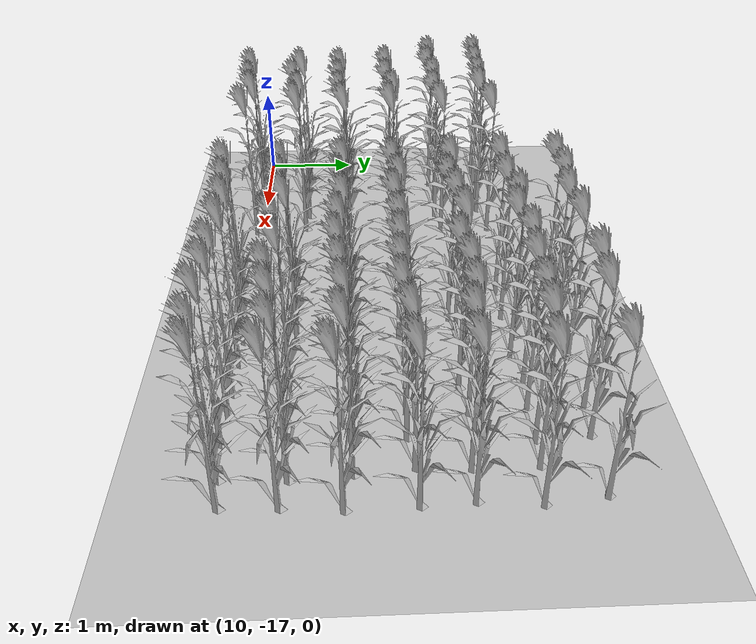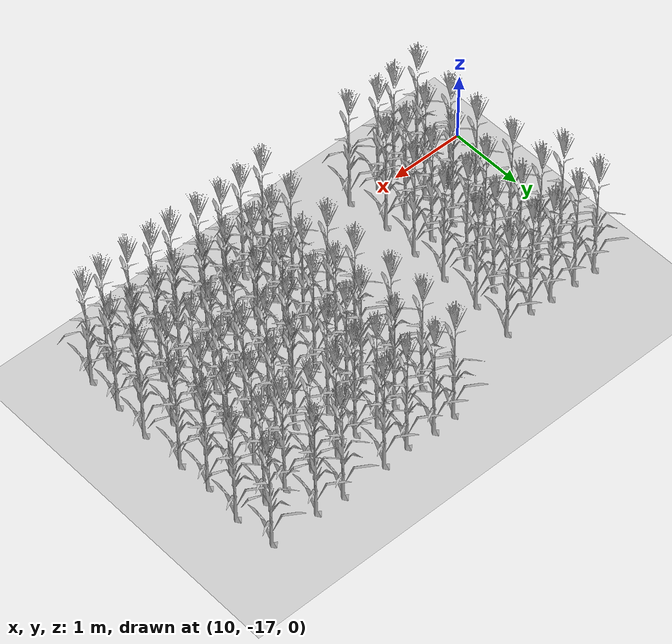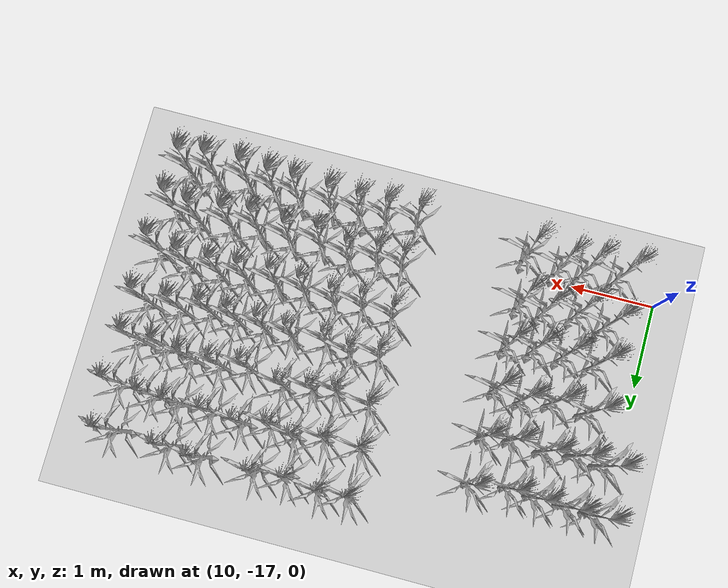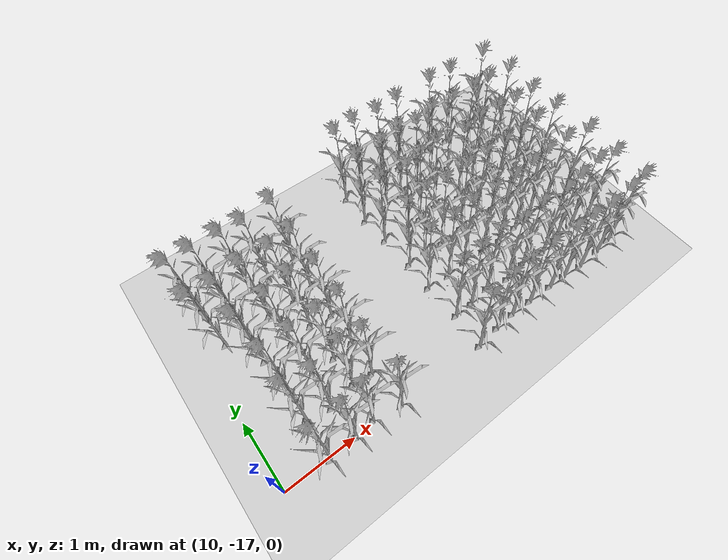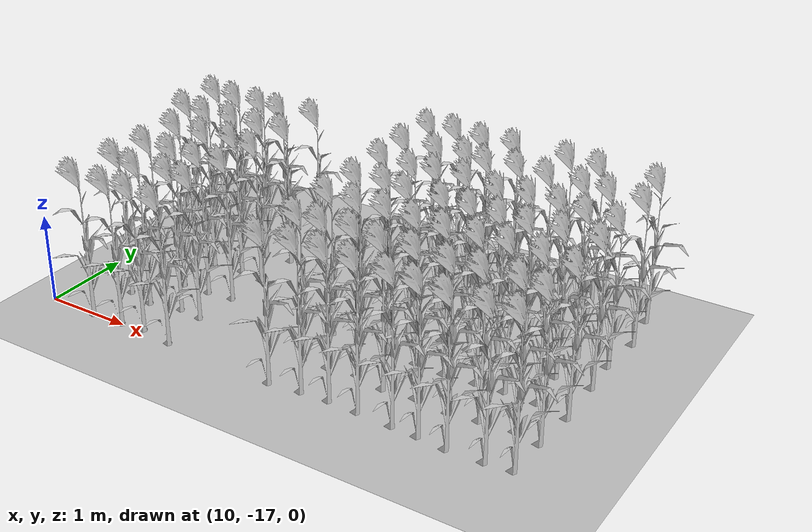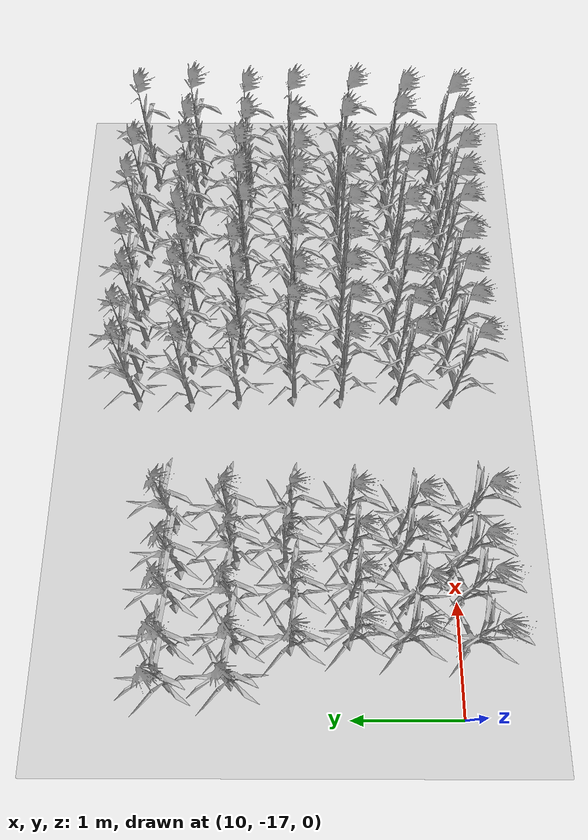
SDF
<sdf version="1.7">
 <world name="farmland_world">
  <model name="ground_plane">
   <static>1</static>
   <link name="link">
    <collision name="collision">
     <geometry><plane><normal>0 0 1</normal><size>40.0 40.0</size></plane></geometry>
     <surface><friction><ode><mu>100</mu><mu2>50</mu2></ode></friction></surface>
    </collision>
    <visual name="visual">
     <cast_shadows>0</cast_shadows>
     <geometry><plane><normal>0 0 1</normal><size>40.0 40.0</size></plane></geometry>
     <material>
      <script><uri>file://media/materials/scripts/gazebo.material</uri><name>Gazebo/Grey</name></script>
     </material>
    </visual>
   </link>
  </model>
  <model name="tree_3_414">
   <static>1</static>
   <link name="link">
    <collision name="collision">
     <geometry><mesh><uri>model://Corn_low_poly/corn.obj</uri><scale>1 1 1</scale></mesh></geometry>
     <surface><friction><ode><mu>100</mu><mu2>50</mu2></ode></friction></surface>
    </collision>
    <visual name="visual">
     <geometry><mesh><uri>model://Corn_low_poly/corn.obj</uri><scale>1 1 1</scale></mesh></geometry>
    </visual>
   </link>
   <pose>10.318505995673648 -14.39027419116462 0 0 0 0</pose>
  </model>
  <model name="tree_3_415">
   <static>1</static>
   <link name="link">
    <collision name="collision">
     <geometry><mesh><uri>model://Corn_low_poly/corn.obj</uri><scale>1 1 1</scale></mesh></geometry>
     <surface><friction><ode><mu>100</mu><mu2>50</mu2></ode></friction></surface>
    </collision>
    <visual name="visual">
     <geometry><mesh><uri>model://Corn_low_poly/corn.obj</uri><scale>1 1 1</scale></mesh></geometry>
    </visual>
   </link>
   <pose>10.33255970619316 -14.934165297839725 0 0 0 0</pose>
  </model>
  <model name="tree_3_444">
   <static>1</static>
   <link name="link">
    <collision name="collision">
     <geometry><mesh><uri>model://Corn_low_poly/corn.obj</uri><scale>1 1 1</scale></mesh></geometry>
     <surface><friction><ode><mu>100</mu><mu2>50</mu2></ode></friction></surface>
    </collision>
    <visual name="visual">
     <geometry><mesh><uri>model://Corn_low_poly/corn.obj</uri><scale>1 1 1</scale></mesh></geometry>
    </visual>
   </link>
   <pose>10.628539014141005 -14.403042911683016 0 0 0 0</pose>
  </model>
  <model name="tree_3_445">
   <static>1</static>
   <link name="link">
    <collision name="collision">
     <geometry><mesh><uri>model://Corn_low_poly/corn.obj</uri><scale>1 1 1</scale></mesh></geometry>
     <surface><friction><ode><mu>100</mu><mu2>50</mu2></ode></friction></surface>
    </collision>
    <visual name="visual">
     <geometry><mesh><uri>model://Corn_low_poly/corn.obj</uri><scale>1 1 1</scale></mesh></geometry>
    </visual>
   </link>
   <pose>10.64200338443756 -14.967694048747475 0 0 0 0</pose>
  </model>
  <model name="tree_3_446">
   <static>1</static>
   <link name="link">
    <collision name="collision">
     <geometry><mesh><uri>model://Corn_low_poly/corn.obj</uri><scale>1 1 1</scale></mesh></geometry>
     <surface><friction><ode><mu>100</mu><mu2>50</mu2></ode></friction></surface>
    </collision>
    <visual name="visual">
     <geometry><mesh><uri>model://Corn_low_poly/corn.obj</uri><scale>1 1 1</scale></mesh></geometry>
    </visual>
   </link>
   <pose>10.62614067962394 -15.458509562354656 0 0 0 0</pose>
  </model>
  <model name="tree_3_447">
   <static>1</static>
   <link name="link">
    <collision name="collision">
     <geometry><mesh><uri>model://Corn_low_poly/corn.obj</uri><scale>1 1 1</scale></mesh></geometry>
     <surface><friction><ode><mu>100</mu><mu2>50</mu2></ode></friction></surface>
    </collision>
    <visual name="visual">
     <geometry><mesh><uri>model://Corn_low_poly/corn.obj</uri><scale>1 1 1</scale></mesh></geometry>
    </visual>
   </link>
   <pose>10.675190546503716 -15.988190008646807 0 0 0 0</pose>
  </model>
  <model name="tree_3_448">
   <static>1</static>
   <link name="link">
    <collision name="collision">
     <geometry><mesh><uri>model://Corn_low_poly/corn.obj</uri><scale>1 1 1</scale></mesh></geometry>
     <surface><friction><ode><mu>100</mu><mu2>50</mu2></ode></friction></surface>
    </collision>
    <visual name="visual">
     <geometry><mesh><uri>model://Corn_low_poly/corn.obj</uri><scale>1 1 1</scale></mesh></geometry>
    </visual>
   </link>
   <pose>10.655045053487182 -16.441887951826953 0 0 0 0</pose>
  </model>
  <model name="tree_3_449">
   <static>1</static>
   <link name="link">
    <collision name="collision">
     <geometry><mesh><uri>model://Corn_low_poly/corn.obj</uri><scale>1 1 1</scale></mesh></geometry>
     <surface><friction><ode><mu>100</mu><mu2>50</mu2></ode></friction></surface>
    </collision>
    <visual name="visual">
     <geometry><mesh><uri>model://Corn_low_poly/corn.obj</uri><scale>1 1 1</scale></mesh></geometry>
    </visual>
   </link>
   <pose>10.639123765461491 -17.016697311473507 0 0 0 0</pose>
  </model>
  <model name="tree_3_474">
   <static>1</static>
   <link name="link">
    <collision name="collision">
     <geometry><mesh><uri>model://Corn_low_poly/corn.obj</uri><scale>1 1 1</scale></mesh></geometry>
     <surface><friction><ode><mu>100</mu><mu2>50</mu2></ode></friction></surface>
    </collision>
    <visual name="visual">
     <geometry><mesh><uri>model://Corn_low_poly/corn.obj</uri><scale>1 1 1</scale></mesh></geometry>
    </visual>
   </link>
   <pose>10.991777529010998 -14.41053702112643 0 0 0 0</pose>
  </model>
  <model name="tree_3_475">
   <static>1</static>
   <link name="link">
    <collision name="collision">
     <geometry><mesh><uri>model://Corn_low_poly/corn.obj</uri><scale>1 1 1</scale></mesh></geometry>
     <surface><friction><ode><mu>100</mu><mu2>50</mu2></ode></friction></surface>
    </collision>
    <visual name="visual">
     <geometry><mesh><uri>model://Corn_low_poly/corn.obj</uri><scale>1 1 1</scale></mesh></geometry>
    </visual>
   </link>
   <pose>10.998304538591645 -14.925738596997299 0 0 0 0</pose>
  </model>
  <model name="tree_3_476">
   <static>1</static>
   <link name="link">
    <collision name="collision">
     <geometry><mesh><uri>model://Corn_low_poly/corn.obj</uri><scale>1 1 1</scale></mesh></geometry>
     <surface><friction><ode><mu>100</mu><mu2>50</mu2></ode></friction></surface>
    </collision>
    <visual name="visual">
     <geometry><mesh><uri>model://Corn_low_poly/corn.obj</uri><scale>1 1 1</scale></mesh></geometry>
    </visual>
   </link>
   <pose>11.028290751969427 -15.466265066491058 0 0 0 0</pose>
  </model>
  <model name="tree_3_477">
   <static>1</static>
   <link name="link">
    <collision name="collision">
     <geometry><mesh><uri>model://Corn_low_poly/corn.obj</uri><scale>1 1 1</scale></mesh></geometry>
     <surface><friction><ode><mu>100</mu><mu2>50</mu2></ode></friction></surface>
    </collision>
    <visual name="visual">
     <geometry><mesh><uri>model://Corn_low_poly/corn.obj</uri><scale>1 1 1</scale></mesh></geometry>
    </visual>
   </link>
   <pose>11.030448810245783 -15.997065588892934 0 0 0 0</pose>
  </model>
  <model name="tree_3_478">
   <static>1</static>
   <link name="link">
    <collision name="collision">
     <geometry><mesh><uri>model://Corn_low_poly/corn.obj</uri><scale>1 1 1</scale></mesh></geometry>
     <surface><friction><ode><mu>100</mu><mu2>50</mu2></ode></friction></surface>
    </collision>
    <visual name="visual">
     <geometry><mesh><uri>model://Corn_low_poly/corn.obj</uri><scale>1 1 1</scale></mesh></geometry>
    </visual>
   </link>
   <pose>10.984404252659225 -16.511796548939877 0 0 0 0</pose>
  </model>
  <model name="tree_3_479">
   <static>1</static>
   <link name="link">
    <collision name="collision">
     <geometry><mesh><uri>model://Corn_low_poly/corn.obj</uri><scale>1 1 1</scale></mesh></geometry>
     <surface><friction><ode><mu>100</mu><mu2>50</mu2></ode></friction></surface>
    </collision>
    <visual name="visual">
     <geometry><mesh><uri>model://Corn_low_poly/corn.obj</uri><scale>1 1 1</scale></mesh></geometry>
    </visual>
   </link>
   <pose>11.02479439546209 -16.99717231120693 0 0 0 0</pose>
  </model>
  <model name="tree_3_504">
   <static>1</static>
   <link name="link">
    <collision name="collision">
     <geometry><mesh><uri>model://Corn_low_poly/corn.obj</uri><scale>1 1 1</scale></mesh></geometry>
     <surface><friction><ode><mu>100</mu><mu2>50</mu2></ode></friction></surface>
    </collision>
    <visual name="visual">
     <geometry><mesh><uri>model://Corn_low_poly/corn.obj</uri><scale>1 1 1</scale></mesh></geometry>
    </visual>
   </link>
   <pose>11.29060489834677 -14.435912453428934 0 0 0 0</pose>
  </model>
  <model name="tree_3_505">
   <static>1</static>
   <link name="link">
    <collision name="collision">
     <geometry><mesh><uri>model://Corn_low_poly/corn.obj</uri><scale>1 1 1</scale></mesh></geometry>
     <surface><friction><ode><mu>100</mu><mu2>50</mu2></ode></friction></surface>
    </collision>
    <visual name="visual">
     <geometry><mesh><uri>model://Corn_low_poly/corn.obj</uri><scale>1 1 1</scale></mesh></geometry>
    </visual>
   </link>
   <pose>11.378198869245816 -14.94975604721588 0 0 0 0</pose>
  </model>
  <model name="tree_3_506">
   <static>1</static>
   <link name="link">
    <collision name="collision">
     <geometry><mesh><uri>model://Corn_low_poly/corn.obj</uri><scale>1 1 1</scale></mesh></geometry>
     <surface><friction><ode><mu>100</mu><mu2>50</mu2></ode></friction></surface>
    </collision>
    <visual name="visual">
     <geometry><mesh><uri>model://Corn_low_poly/corn.obj</uri><scale>1 1 1</scale></mesh></geometry>
    </visual>
   </link>
   <pose>11.369229447230142 -15.401079052199101 0 0 0 0</pose>
  </model>
  <model name="tree_3_507">
   <static>1</static>
   <link name="link">
    <collision name="collision">
     <geometry><mesh><uri>model://Corn_low_poly/corn.obj</uri><scale>1 1 1</scale></mesh></geometry>
     <surface><friction><ode><mu>100</mu><mu2>50</mu2></ode></friction></surface>
    </collision>
    <visual name="visual">
     <geometry><mesh><uri>model://Corn_low_poly/corn.obj</uri><scale>1 1 1</scale></mesh></geometry>
    </visual>
   </link>
   <pose>11.366453865646786 -15.9883721674735 0 0 0 0</pose>
  </model>
  <model name="tree_3_508">
   <static>1</static>
   <link name="link">
    <collision name="collision">
     <geometry><mesh><uri>model://Corn_low_poly/corn.obj</uri><scale>1 1 1</scale></mesh></geometry>
     <surface><friction><ode><mu>100</mu><mu2>50</mu2></ode></friction></surface>
    </collision>
    <visual name="visual">
     <geometry><mesh><uri>model://Corn_low_poly/corn.obj</uri><scale>1 1 1</scale></mesh></geometry>
    </visual>
   </link>
   <pose>11.36009342840449 -16.43373811521189 0 0 0 0</pose>
  </model>
  <model name="tree_3_509">
   <static>1</static>
   <link name="link">
    <collision name="collision">
     <geometry><mesh><uri>model://Corn_low_poly/corn.obj</uri><scale>1 1 1</scale></mesh></geometry>
     <surface><friction><ode><mu>100</mu><mu2>50</mu2></ode></friction></surface>
    </collision>
    <visual name="visual">
     <geometry><mesh><uri>model://Corn_low_poly/corn.obj</uri><scale>1 1 1</scale></mesh></geometry>
    </visual>
   </link>
   <pose>11.303911461985631 -16.96194511279953 0 0 0 0</pose>
  </model>
  <model name="tree_3_534">
   <static>1</static>
   <link name="link">
    <collision name="collision">
     <geometry><mesh><uri>model://Corn_low_poly/corn.obj</uri><scale>1 1 1</scale></mesh></geometry>
     <surface><friction><ode><mu>100</mu><mu2>50</mu2></ode></friction></surface>
    </collision>
    <visual name="visual">
     <geometry><mesh><uri>model://Corn_low_poly/corn.obj</uri><scale>1 1 1</scale></mesh></geometry>
    </visual>
   </link>
   <pose>11.718569885644671 -14.370633760723742 0 0 0 0</pose>
  </model>
  <model name="tree_3_535">
   <static>1</static>
   <link name="link">
    <collision name="collision">
     <geometry><mesh><uri>model://Corn_low_poly/corn.obj</uri><scale>1 1 1</scale></mesh></geometry>
     <surface><friction><ode><mu>100</mu><mu2>50</mu2></ode></friction></surface>
    </collision>
    <visual name="visual">
     <geometry><mesh><uri>model://Corn_low_poly/corn.obj</uri><scale>1 1 1</scale></mesh></geometry>
    </visual>
   </link>
   <pose>11.69146800901288 -14.903018499819554 0 0 0 0</pose>
  </model>
  <model name="tree_3_536">
   <static>1</static>
   <link name="link">
    <collision name="collision">
     <geometry><mesh><uri>model://Corn_low_poly/corn.obj</uri><scale>1 1 1</scale></mesh></geometry>
     <surface><friction><ode><mu>100</mu><mu2>50</mu2></ode></friction></surface>
    </collision>
    <visual name="visual">
     <geometry><mesh><uri>model://Corn_low_poly/corn.obj</uri><scale>1 1 1</scale></mesh></geometry>
    </visual>
   </link>
   <pose>11.680672471613226 -15.45069342316152 0 0 0 0</pose>
  </model>
  <model name="tree_3_537">
   <static>1</static>
   <link name="link">
    <collision name="collision">
     <geometry><mesh><uri>model://Corn_low_poly/corn.obj</uri><scale>1 1 1</scale></mesh></geometry>
     <surface><friction><ode><mu>100</mu><mu2>50</mu2></ode></friction></surface>
    </collision>
    <visual name="visual">
     <geometry><mesh><uri>model://Corn_low_poly/corn.obj</uri><scale>1 1 1</scale></mesh></geometry>
    </visual>
   </link>
   <pose>11.67019340857157 -15.954562289669033 0 0 0 0</pose>
  </model>
  <model name="tree_3_538">
   <static>1</static>
   <link name="link">
    <collision name="collision">
     <geometry><mesh><uri>model://Corn_low_poly/corn.obj</uri><scale>1 1 1</scale></mesh></geometry>
     <surface><friction><ode><mu>100</mu><mu2>50</mu2></ode></friction></surface>
    </collision>
    <visual name="visual">
     <geometry><mesh><uri>model://Corn_low_poly/corn.obj</uri><scale>1 1 1</scale></mesh></geometry>
    </visual>
   </link>
   <pose>11.637608736446666 -16.46442620602015 0 0 0 0</pose>
  </model>
  <model name="tree_3_539">
   <static>1</static>
   <link name="link">
    <collision name="collision">
     <geometry><mesh><uri>model://Corn_low_poly/corn.obj</uri><scale>1 1 1</scale></mesh></geometry>
     <surface><friction><ode><mu>100</mu><mu2>50</mu2></ode></friction></surface>
    </collision>
    <visual name="visual">
     <geometry><mesh><uri>model://Corn_low_poly/corn.obj</uri><scale>1 1 1</scale></mesh></geometry>
    </visual>
   </link>
   <pose>11.69683116003274 -17.024934207818273 0 0 0 0</pose>
  </model>
  <model name="tree_3_563">
   <static>1</static>
   <link name="link">
    <collision name="collision">
     <geometry><mesh><uri>model://Corn_low_poly/corn.obj</uri><scale>1 1 1</scale></mesh></geometry>
     <surface><friction><ode><mu>100</mu><mu2>50</mu2></ode></friction></surface>
    </collision>
    <visual name="visual">
     <geometry><mesh><uri>model://Corn_low_poly/corn.obj</uri><scale>1 1 1</scale></mesh></geometry>
    </visual>
   </link>
   <pose>12.968831590598008 -13.918923949075287 0 0 0 0</pose>
  </model>
  <model name="tree_3_564">
   <static>1</static>
   <link name="link">
    <collision name="collision">
     <geometry><mesh><uri>model://Corn_low_poly/corn.obj</uri><scale>1 1 1</scale></mesh></geometry>
     <surface><friction><ode><mu>100</mu><mu2>50</mu2></ode></friction></surface>
    </collision>
    <visual name="visual">
     <geometry><mesh><uri>model://Corn_low_poly/corn.obj</uri><scale>1 1 1</scale></mesh></geometry>
    </visual>
   </link>
   <pose>12.95799318968643 -14.444417115495693 0 0 0 0</pose>
  </model>
  <model name="tree_3_565">
   <static>1</static>
   <link name="link">
    <collision name="collision">
     <geometry><mesh><uri>model://Corn_low_poly/corn.obj</uri><scale>1 1 1</scale></mesh></geometry>
     <surface><friction><ode><mu>100</mu><mu2>50</mu2></ode></friction></surface>
    </collision>
    <visual name="visual">
     <geometry><mesh><uri>model://Corn_low_poly/corn.obj</uri><scale>1 1 1</scale></mesh></geometry>
    </visual>
   </link>
   <pose>12.985895807308797 -14.920349417437759 0 0 0 0</pose>
  </model>
  <model name="tree_3_566">
   <static>1</static>
   <link name="link">
    <collision name="collision">
     <geometry><mesh><uri>model://Corn_low_poly/corn.obj</uri><scale>1 1 1</scale></mesh></geometry>
     <surface><friction><ode><mu>100</mu><mu2>50</mu2></ode></friction></surface>
    </collision>
    <visual name="visual">
     <geometry><mesh><uri>model://Corn_low_poly/corn.obj</uri><scale>1 1 1</scale></mesh></geometry>
    </visual>
   </link>
   <pose>13.019702631338685 -15.473874806897651 0 0 0 0</pose>
  </model>
  <model name="tree_3_567">
   <static>1</static>
   <link name="link">
    <collision name="collision">
     <geometry><mesh><uri>model://Corn_low_poly/corn.obj</uri><scale>1 1 1</scale></mesh></geometry>
     <surface><friction><ode><mu>100</mu><mu2>50</mu2></ode></friction></surface>
    </collision>
    <visual name="visual">
     <geometry><mesh><uri>model://Corn_low_poly/corn.obj</uri><scale>1 1 1</scale></mesh></geometry>
    </visual>
   </link>
   <pose>12.998242376568069 -15.944755489107092 0 0 0 0</pose>
  </model>
  <model name="tree_3_568">
   <static>1</static>
   <link name="link">
    <collision name="collision">
     <geometry><mesh><uri>model://Corn_low_poly/corn.obj</uri><scale>1 1 1</scale></mesh></geometry>
     <surface><friction><ode><mu>100</mu><mu2>50</mu2></ode></friction></surface>
    </collision>
    <visual name="visual">
     <geometry><mesh><uri>model://Corn_low_poly/corn.obj</uri><scale>1 1 1</scale></mesh></geometry>
    </visual>
   </link>
   <pose>13.031310738452508 -16.5150524606587 0 0 0 0</pose>
  </model>
  <model name="tree_3_569">
   <static>1</static>
   <link name="link">
    <collision name="collision">
     <geometry><mesh><uri>model://Corn_low_poly/corn.obj</uri><scale>1 1 1</scale></mesh></geometry>
     <surface><friction><ode><mu>100</mu><mu2>50</mu2></ode></friction></surface>
    </collision>
    <visual name="visual">
     <geometry><mesh><uri>model://Corn_low_poly/corn.obj</uri><scale>1 1 1</scale></mesh></geometry>
    </visual>
   </link>
   <pose>12.991239271801858 -17.046565318378377 0 0 0 0</pose>
  </model>
  <model name="tree_3_593">
   <static>1</static>
   <link name="link">
    <collision name="collision">
     <geometry><mesh><uri>model://Corn_low_poly/corn.obj</uri><scale>1 1 1</scale></mesh></geometry>
     <surface><friction><ode><mu>100</mu><mu2>50</mu2></ode></friction></surface>
    </collision>
    <visual name="visual">
     <geometry><mesh><uri>model://Corn_low_poly/corn.obj</uri><scale>1 1 1</scale></mesh></geometry>
    </visual>
   </link>
   <pose>13.28692360456015 -13.896530977235413 0 0 0 0</pose>
  </model>
  <model name="tree_3_594">
   <static>1</static>
   <link name="link">
    <collision name="collision">
     <geometry><mesh><uri>model://Corn_low_poly/corn.obj</uri><scale>1 1 1</scale></mesh></geometry>
     <surface><friction><ode><mu>100</mu><mu2>50</mu2></ode></friction></surface>
    </collision>
    <visual name="visual">
     <geometry><mesh><uri>model://Corn_low_poly/corn.obj</uri><scale>1 1 1</scale></mesh></geometry>
    </visual>
   </link>
   <pose>13.36736696835388 -14.44815331485145 0 0 0 0</pose>
  </model>
  <model name="tree_3_595">
   <static>1</static>
   <link name="link">
    <collision name="collision">
     <geometry><mesh><uri>model://Corn_low_poly/corn.obj</uri><scale>1 1 1</scale></mesh></geometry>
     <surface><friction><ode><mu>100</mu><mu2>50</mu2></ode></friction></surface>
    </collision>
    <visual name="visual">
     <geometry><mesh><uri>model://Corn_low_poly/corn.obj</uri><scale>1 1 1</scale></mesh></geometry>
    </visual>
   </link>
   <pose>13.376813943068322 -14.978289674794377 0 0 0 0</pose>
  </model>
  <model name="tree_3_596">
   <static>1</static>
   <link name="link">
    <collision name="collision">
     <geometry><mesh><uri>model://Corn_low_poly/corn.obj</uri><scale>1 1 1</scale></mesh></geometry>
     <surface><friction><ode><mu>100</mu><mu2>50</mu2></ode></friction></surface>
    </collision>
    <visual name="visual">
     <geometry><mesh><uri>model://Corn_low_poly/corn.obj</uri><scale>1 1 1</scale></mesh></geometry>
    </visual>
   </link>
   <pose>13.343908643262198 -15.42609338246514 0 0 0 0</pose>
  </model>
  <model name="tree_3_597">
   <static>1</static>
   <link name="link">
    <collision name="collision">
     <geometry><mesh><uri>model://Corn_low_poly/corn.obj</uri><scale>1 1 1</scale></mesh></geometry>
     <surface><friction><ode><mu>100</mu><mu2>50</mu2></ode></friction></surface>
    </collision>
    <visual name="visual">
     <geometry><mesh><uri>model://Corn_low_poly/corn.obj</uri><scale>1 1 1</scale></mesh></geometry>
    </visual>
   </link>
   <pose>13.350386125780169 -15.968298950484579 0 0 0 0</pose>
  </model>
  <model name="tree_3_598">
   <static>1</static>
   <link name="link">
    <collision name="collision">
     <geometry><mesh><uri>model://Corn_low_poly/corn.obj</uri><scale>1 1 1</scale></mesh></geometry>
     <surface><friction><ode><mu>100</mu><mu2>50</mu2></ode></friction></surface>
    </collision>
    <visual name="visual">
     <geometry><mesh><uri>model://Corn_low_poly/corn.obj</uri><scale>1 1 1</scale></mesh></geometry>
    </visual>
   </link>
   <pose>13.315581948426734 -16.50827743934608 0 0 0 0</pose>
  </model>
  <model name="tree_3_599">
   <static>1</static>
   <link name="link">
    <collision name="collision">
     <geometry><mesh><uri>model://Corn_low_poly/corn.obj</uri><scale>1 1 1</scale></mesh></geometry>
     <surface><friction><ode><mu>100</mu><mu2>50</mu2></ode></friction></surface>
    </collision>
    <visual name="visual">
     <geometry><mesh><uri>model://Corn_low_poly/corn.obj</uri><scale>1 1 1</scale></mesh></geometry>
    </visual>
   </link>
   <pose>13.34559277438256 -17.001885492598685 0 0 0 0</pose>
  </model>
  <model name="tree_3_623">
   <static>1</static>
   <link name="link">
    <collision name="collision">
     <geometry><mesh><uri>model://Corn_low_poly/corn.obj</uri><scale>1 1 1</scale></mesh></geometry>
     <surface><friction><ode><mu>100</mu><mu2>50</mu2></ode></friction></surface>
    </collision>
    <visual name="visual">
     <geometry><mesh><uri>model://Corn_low_poly/corn.obj</uri><scale>1 1 1</scale></mesh></geometry>
    </visual>
   </link>
   <pose>13.65133327341212 -13.942526700950975 0 0 0 0</pose>
  </model>
  <model name="tree_3_624">
   <static>1</static>
   <link name="link">
    <collision name="collision">
     <geometry><mesh><uri>model://Corn_low_poly/corn.obj</uri><scale>1 1 1</scale></mesh></geometry>
     <surface><friction><ode><mu>100</mu><mu2>50</mu2></ode></friction></surface>
    </collision>
    <visual name="visual">
     <geometry><mesh><uri>model://Corn_low_poly/corn.obj</uri><scale>1 1 1</scale></mesh></geometry>
    </visual>
   </link>
   <pose>13.689793852468583 -14.382396835723947 0 0 0 0</pose>
  </model>
  <model name="tree_3_625">
   <static>1</static>
   <link name="link">
    <collision name="collision">
     <geometry><mesh><uri>model://Corn_low_poly/corn.obj</uri><scale>1 1 1</scale></mesh></geometry>
     <surface><friction><ode><mu>100</mu><mu2>50</mu2></ode></friction></surface>
    </collision>
    <visual name="visual">
     <geometry><mesh><uri>model://Corn_low_poly/corn.obj</uri><scale>1 1 1</scale></mesh></geometry>
    </visual>
   </link>
   <pose>13.635514171928811 -14.933275936238154 0 0 0 0</pose>
  </model>
  <model name="tree_3_626">
   <static>1</static>
   <link name="link">
    <collision name="collision">
     <geometry><mesh><uri>model://Corn_low_poly/corn.obj</uri><scale>1 1 1</scale></mesh></geometry>
     <surface><friction><ode><mu>100</mu><mu2>50</mu2></ode></friction></surface>
    </collision>
    <visual name="visual">
     <geometry><mesh><uri>model://Corn_low_poly/corn.obj</uri><scale>1 1 1</scale></mesh></geometry>
    </visual>
   </link>
   <pose>13.62543719502442 -15.48023403541665 0 0 0 0</pose>
  </model>
  <model name="tree_3_627">
   <static>1</static>
   <link name="link">
    <collision name="collision">
     <geometry><mesh><uri>model://Corn_low_poly/corn.obj</uri><scale>1 1 1</scale></mesh></geometry>
     <surface><friction><ode><mu>100</mu><mu2>50</mu2></ode></friction></surface>
    </collision>
    <visual name="visual">
     <geometry><mesh><uri>model://Corn_low_poly/corn.obj</uri><scale>1 1 1</scale></mesh></geometry>
    </visual>
   </link>
   <pose>13.669278514690046 -15.936559059170227 0 0 0 0</pose>
  </model>
  <model name="tree_3_628">
   <static>1</static>
   <link name="link">
    <collision name="collision">
     <geometry><mesh><uri>model://Corn_low_poly/corn.obj</uri><scale>1 1 1</scale></mesh></geometry>
     <surface><friction><ode><mu>100</mu><mu2>50</mu2></ode></friction></surface>
    </collision>
    <visual name="visual">
     <geometry><mesh><uri>model://Corn_low_poly/corn.obj</uri><scale>1 1 1</scale></mesh></geometry>
    </visual>
   </link>
   <pose>13.643082288642443 -16.462491816514113 0 0 0 0</pose>
  </model>
  <model name="tree_3_629">
   <static>1</static>
   <link name="link">
    <collision name="collision">
     <geometry><mesh><uri>model://Corn_low_poly/corn.obj</uri><scale>1 1 1</scale></mesh></geometry>
     <surface><friction><ode><mu>100</mu><mu2>50</mu2></ode></friction></surface>
    </collision>
    <visual name="visual">
     <geometry><mesh><uri>model://Corn_low_poly/corn.obj</uri><scale>1 1 1</scale></mesh></geometry>
    </visual>
   </link>
   <pose>13.65541800287153 -16.9782690112132 0 0 0 0</pose>
  </model>
  <model name="tree_3_653">
   <static>1</static>
   <link name="link">
    <collision name="collision">
     <geometry><mesh><uri>model://Corn_low_poly/corn.obj</uri><scale>1 1 1</scale></mesh></geometry>
     <surface><friction><ode><mu>100</mu><mu2>50</mu2></ode></friction></surface>
    </collision>
    <visual name="visual">
     <geometry><mesh><uri>model://Corn_low_poly/corn.obj</uri><scale>1 1 1</scale></mesh></geometry>
    </visual>
   </link>
   <pose>14.012926689089513 -13.913394793604002 0 0 0 0</pose>
  </model>
  <model name="tree_3_654">
   <static>1</static>
   <link name="link">
    <collision name="collision">
     <geometry><mesh><uri>model://Corn_low_poly/corn.obj</uri><scale>1 1 1</scale></mesh></geometry>
     <surface><friction><ode><mu>100</mu><mu2>50</mu2></ode></friction></surface>
    </collision>
    <visual name="visual">
     <geometry><mesh><uri>model://Corn_low_poly/corn.obj</uri><scale>1 1 1</scale></mesh></geometry>
    </visual>
   </link>
   <pose>13.95550869614977 -14.447720083519597 0 0 0 0</pose>
  </model>
  <model name="tree_3_655">
   <static>1</static>
   <link name="link">
    <collision name="collision">
     <geometry><mesh><uri>model://Corn_low_poly/corn.obj</uri><scale>1 1 1</scale></mesh></geometry>
     <surface><friction><ode><mu>100</mu><mu2>50</mu2></ode></friction></surface>
    </collision>
    <visual name="visual">
     <geometry><mesh><uri>model://Corn_low_poly/corn.obj</uri><scale>1 1 1</scale></mesh></geometry>
    </visual>
   </link>
   <pose>13.958257478258087 -14.890232060642044 0 0 0 0</pose>
  </model>
  <model name="tree_3_656">
   <static>1</static>
   <link name="link">
    <collision name="collision">
     <geometry><mesh><uri>model://Corn_low_poly/corn.obj</uri><scale>1 1 1</scale></mesh></geometry>
     <surface><friction><ode><mu>100</mu><mu2>50</mu2></ode></friction></surface>
    </collision>
    <visual name="visual">
     <geometry><mesh><uri>model://Corn_low_poly/corn.obj</uri><scale>1 1 1</scale></mesh></geometry>
    </visual>
   </link>
   <pose>14.018906111585204 -15.450071942006637 0 0 0 0</pose>
  </model>
  <model name="tree_3_657">
   <static>1</static>
   <link name="link">
    <collision name="collision">
     <geometry><mesh><uri>model://Corn_low_poly/corn.obj</uri><scale>1 1 1</scale></mesh></geometry>
     <surface><friction><ode><mu>100</mu><mu2>50</mu2></ode></friction></surface>
    </collision>
    <visual name="visual">
     <geometry><mesh><uri>model://Corn_low_poly/corn.obj</uri><scale>1 1 1</scale></mesh></geometry>
    </visual>
   </link>
   <pose>14.013822322774674 -15.966609606572296 0 0 0 0</pose>
  </model>
  <model name="tree_3_658">
   <static>1</static>
   <link name="link">
    <collision name="collision">
     <geometry><mesh><uri>model://Corn_low_poly/corn.obj</uri><scale>1 1 1</scale></mesh></geometry>
     <surface><friction><ode><mu>100</mu><mu2>50</mu2></ode></friction></surface>
    </collision>
    <visual name="visual">
     <geometry><mesh><uri>model://Corn_low_poly/corn.obj</uri><scale>1 1 1</scale></mesh></geometry>
    </visual>
   </link>
   <pose>13.97850543547799 -16.53085998265126 0 0 0 0</pose>
  </model>
  <model name="tree_3_659">
   <static>1</static>
   <link name="link">
    <collision name="collision">
     <geometry><mesh><uri>model://Corn_low_poly/corn.obj</uri><scale>1 1 1</scale></mesh></geometry>
     <surface><friction><ode><mu>100</mu><mu2>50</mu2></ode></friction></surface>
    </collision>
    <visual name="visual">
     <geometry><mesh><uri>model://Corn_low_poly/corn.obj</uri><scale>1 1 1</scale></mesh></geometry>
    </visual>
   </link>
   <pose>13.984742373348638 -16.986589339054824 0 0 0 0</pose>
  </model>
  <model name="tree_3_684">
   <static>1</static>
   <link name="link">
    <collision name="collision">
     <geometry><mesh><uri>model://Corn_low_poly/corn.obj</uri><scale>1 1 1</scale></mesh></geometry>
     <surface><friction><ode><mu>100</mu><mu2>50</mu2></ode></friction></surface>
    </collision>
    <visual name="visual">
     <geometry><mesh><uri>model://Corn_low_poly/corn.obj</uri><scale>1 1 1</scale></mesh></geometry>
    </visual>
   </link>
   <pose>14.288686162233162 -14.378399000989411 0 0 0 0</pose>
  </model>
  <model name="tree_3_685">
   <static>1</static>
   <link name="link">
    <collision name="collision">
     <geometry><mesh><uri>model://Corn_low_poly/corn.obj</uri><scale>1 1 1</scale></mesh></geometry>
     <surface><friction><ode><mu>100</mu><mu2>50</mu2></ode></friction></surface>
    </collision>
    <visual name="visual">
     <geometry><mesh><uri>model://Corn_low_poly/corn.obj</uri><scale>1 1 1</scale></mesh></geometry>
    </visual>
   </link>
   <pose>14.375230866237244 -14.980030481437886 0 0 0 0</pose>
  </model>
  <model name="tree_3_686">
   <static>1</static>
   <link name="link">
    <collision name="collision">
     <geometry><mesh><uri>model://Corn_low_poly/corn.obj</uri><scale>1 1 1</scale></mesh></geometry>
     <surface><friction><ode><mu>100</mu><mu2>50</mu2></ode></friction></surface>
    </collision>
    <visual name="visual">
     <geometry><mesh><uri>model://Corn_low_poly/corn.obj</uri><scale>1 1 1</scale></mesh></geometry>
    </visual>
   </link>
   <pose>14.332001619052798 -15.455762162242078 0 0 0 0</pose>
  </model>
  <model name="tree_3_687">
   <static>1</static>
   <link name="link">
    <collision name="collision">
     <geometry><mesh><uri>model://Corn_low_poly/corn.obj</uri><scale>1 1 1</scale></mesh></geometry>
     <surface><friction><ode><mu>100</mu><mu2>50</mu2></ode></friction></surface>
    </collision>
    <visual name="visual">
     <geometry><mesh><uri>model://Corn_low_poly/corn.obj</uri><scale>1 1 1</scale></mesh></geometry>
    </visual>
   </link>
   <pose>14.342666031258295 -15.978138328769509 0 0 0 0</pose>
  </model>
  <model name="tree_3_688">
   <static>1</static>
   <link name="link">
    <collision name="collision">
     <geometry><mesh><uri>model://Corn_low_poly/corn.obj</uri><scale>1 1 1</scale></mesh></geometry>
     <surface><friction><ode><mu>100</mu><mu2>50</mu2></ode></friction></surface>
    </collision>
    <visual name="visual">
     <geometry><mesh><uri>model://Corn_low_poly/corn.obj</uri><scale>1 1 1</scale></mesh></geometry>
    </visual>
   </link>
   <pose>14.326354120727931 -16.490840005412213 0 0 0 0</pose>
  </model>
  <model name="tree_3_689">
   <static>1</static>
   <link name="link">
    <collision name="collision">
     <geometry><mesh><uri>model://Corn_low_poly/corn.obj</uri><scale>1 1 1</scale></mesh></geometry>
     <surface><friction><ode><mu>100</mu><mu2>50</mu2></ode></friction></surface>
    </collision>
    <visual name="visual">
     <geometry><mesh><uri>model://Corn_low_poly/corn.obj</uri><scale>1 1 1</scale></mesh></geometry>
    </visual>
   </link>
   <pose>14.37488187864814 -16.99858520410365 0 0 0 0</pose>
  </model>
  <model name="tree_3_713">
   <static>1</static>
   <link name="link">
    <collision name="collision">
     <geometry><mesh><uri>model://Corn_low_poly/corn.obj</uri><scale>1 1 1</scale></mesh></geometry>
     <surface><friction><ode><mu>100</mu><mu2>50</mu2></ode></friction></surface>
    </collision>
    <visual name="visual">
     <geometry><mesh><uri>model://Corn_low_poly/corn.obj</uri><scale>1 1 1</scale></mesh></geometry>
    </visual>
   </link>
   <pose>14.629548821320704 -13.901252658278427 0 0 0 0</pose>
  </model>
  <model name="tree_3_714">
   <static>1</static>
   <link name="link">
    <collision name="collision">
     <geometry><mesh><uri>model://Corn_low_poly/corn.obj</uri><scale>1 1 1</scale></mesh></geometry>
     <surface><friction><ode><mu>100</mu><mu2>50</mu2></ode></friction></surface>
    </collision>
    <visual name="visual">
     <geometry><mesh><uri>model://Corn_low_poly/corn.obj</uri><scale>1 1 1</scale></mesh></geometry>
    </visual>
   </link>
   <pose>14.640162978803048 -14.408067194518077 0 0 0 0</pose>
  </model>
  <model name="tree_3_715">
   <static>1</static>
   <link name="link">
    <collision name="collision">
     <geometry><mesh><uri>model://Corn_low_poly/corn.obj</uri><scale>1 1 1</scale></mesh></geometry>
     <surface><friction><ode><mu>100</mu><mu2>50</mu2></ode></friction></surface>
    </collision>
    <visual name="visual">
     <geometry><mesh><uri>model://Corn_low_poly/corn.obj</uri><scale>1 1 1</scale></mesh></geometry>
    </visual>
   </link>
   <pose>14.690898132468167 -14.926362932731429 0 0 0 0</pose>
  </model>
  <model name="tree_3_716">
   <static>1</static>
   <link name="link">
    <collision name="collision">
     <geometry><mesh><uri>model://Corn_low_poly/corn.obj</uri><scale>1 1 1</scale></mesh></geometry>
     <surface><friction><ode><mu>100</mu><mu2>50</mu2></ode></friction></surface>
    </collision>
    <visual name="visual">
     <geometry><mesh><uri>model://Corn_low_poly/corn.obj</uri><scale>1 1 1</scale></mesh></geometry>
    </visual>
   </link>
   <pose>14.657765414845993 -15.468930118699781 0 0 0 0</pose>
  </model>
  <model name="tree_3_717">
   <static>1</static>
   <link name="link">
    <collision name="collision">
     <geometry><mesh><uri>model://Corn_low_poly/corn.obj</uri><scale>1 1 1</scale></mesh></geometry>
     <surface><friction><ode><mu>100</mu><mu2>50</mu2></ode></friction></surface>
    </collision>
    <visual name="visual">
     <geometry><mesh><uri>model://Corn_low_poly/corn.obj</uri><scale>1 1 1</scale></mesh></geometry>
    </visual>
   </link>
   <pose>14.685561120068284 -15.952769620968072 0 0 0 0</pose>
  </model>
  <model name="tree_3_718">
   <static>1</static>
   <link name="link">
    <collision name="collision">
     <geometry><mesh><uri>model://Corn_low_poly/corn.obj</uri><scale>1 1 1</scale></mesh></geometry>
     <surface><friction><ode><mu>100</mu><mu2>50</mu2></ode></friction></surface>
    </collision>
    <visual name="visual">
     <geometry><mesh><uri>model://Corn_low_poly/corn.obj</uri><scale>1 1 1</scale></mesh></geometry>
    </visual>
   </link>
   <pose>14.708114141857775 -16.528445625092598 0 0 0 0</pose>
  </model>
  <model name="tree_3_719">
   <static>1</static>
   <link name="link">
    <collision name="collision">
     <geometry><mesh><uri>model://Corn_low_poly/corn.obj</uri><scale>1 1 1</scale></mesh></geometry>
     <surface><friction><ode><mu>100</mu><mu2>50</mu2></ode></friction></surface>
    </collision>
    <visual name="visual">
     <geometry><mesh><uri>model://Corn_low_poly/corn.obj</uri><scale>1 1 1</scale></mesh></geometry>
    </visual>
   </link>
   <pose>14.655141750073676 -17.002843798385275 0 0 0 0</pose>
  </model>
  <model name="tree_3_743">
   <static>1</static>
   <link name="link">
    <collision name="collision">
     <geometry><mesh><uri>model://Corn_low_poly/corn.obj</uri><scale>1 1 1</scale></mesh></geometry>
     <surface><friction><ode><mu>100</mu><mu2>50</mu2></ode></friction></surface>
    </collision>
    <visual name="visual">
     <geometry><mesh><uri>model://Corn_low_poly/corn.obj</uri><scale>1 1 1</scale></mesh></geometry>
    </visual>
   </link>
   <pose>14.99750076453736 -13.93349660815391 0 0 0 0</pose>
  </model>
  <model name="tree_3_744">
   <static>1</static>
   <link name="link">
    <collision name="collision">
     <geometry><mesh><uri>model://Corn_low_poly/corn.obj</uri><scale>1 1 1</scale></mesh></geometry>
     <surface><friction><ode><mu>100</mu><mu2>50</mu2></ode></friction></surface>
    </collision>
    <visual name="visual">
     <geometry><mesh><uri>model://Corn_low_poly/corn.obj</uri><scale>1 1 1</scale></mesh></geometry>
    </visual>
   </link>
   <pose>15.030231305227943 -14.406187941758503 0 0 0 0</pose>
  </model>
  <model name="tree_3_745">
   <static>1</static>
   <link name="link">
    <collision name="collision">
     <geometry><mesh><uri>model://Corn_low_poly/corn.obj</uri><scale>1 1 1</scale></mesh></geometry>
     <surface><friction><ode><mu>100</mu><mu2>50</mu2></ode></friction></surface>
    </collision>
    <visual name="visual">
     <geometry><mesh><uri>model://Corn_low_poly/corn.obj</uri><scale>1 1 1</scale></mesh></geometry>
    </visual>
   </link>
   <pose>15.02129477829763 -14.920876607237577 0 0 0 0</pose>
  </model>
  <model name="tree_3_746">
   <static>1</static>
   <link name="link">
    <collision name="collision">
     <geometry><mesh><uri>model://Corn_low_poly/corn.obj</uri><scale>1 1 1</scale></mesh></geometry>
     <surface><friction><ode><mu>100</mu><mu2>50</mu2></ode></friction></surface>
    </collision>
    <visual name="visual">
     <geometry><mesh><uri>model://Corn_low_poly/corn.obj</uri><scale>1 1 1</scale></mesh></geometry>
    </visual>
   </link>
   <pose>14.956634858773793 -15.477598912877196 0 0 0 0</pose>
  </model>
  <model name="tree_3_747">
   <static>1</static>
   <link name="link">
    <collision name="collision">
     <geometry><mesh><uri>model://Corn_low_poly/corn.obj</uri><scale>1 1 1</scale></mesh></geometry>
     <surface><friction><ode><mu>100</mu><mu2>50</mu2></ode></friction></surface>
    </collision>
    <visual name="visual">
     <geometry><mesh><uri>model://Corn_low_poly/corn.obj</uri><scale>1 1 1</scale></mesh></geometry>
    </visual>
   </link>
   <pose>14.987143411130226 -15.927115316654145 0 0 0 0</pose>
  </model>
  <model name="tree_3_748">
   <static>1</static>
   <link name="link">
    <collision name="collision">
     <geometry><mesh><uri>model://Corn_low_poly/corn.obj</uri><scale>1 1 1</scale></mesh></geometry>
     <surface><friction><ode><mu>100</mu><mu2>50</mu2></ode></friction></surface>
    </collision>
    <visual name="visual">
     <geometry><mesh><uri>model://Corn_low_poly/corn.obj</uri><scale>1 1 1</scale></mesh></geometry>
    </visual>
   </link>
   <pose>15.011363670864048 -16.484973964188054 0 0 0 0</pose>
  </model>
  <model name="tree_3_749">
   <static>1</static>
   <link name="link">
    <collision name="collision">
     <geometry><mesh><uri>model://Corn_low_poly/corn.obj</uri><scale>1 1 1</scale></mesh></geometry>
     <surface><friction><ode><mu>100</mu><mu2>50</mu2></ode></friction></surface>
    </collision>
    <visual name="visual">
     <geometry><mesh><uri>model://Corn_low_poly/corn.obj</uri><scale>1 1 1</scale></mesh></geometry>
    </visual>
   </link>
   <pose>14.967772721396585 -17.02910169329602 0 0 0 0</pose>
  </model>
  <model name="tree_3_774">
   <static>1</static>
   <link name="link">
    <collision name="collision">
     <geometry><mesh><uri>model://Corn_low_poly/corn.obj</uri><scale>1 1 1</scale></mesh></geometry>
     <surface><friction><ode><mu>100</mu><mu2>50</mu2></ode></friction></surface>
    </collision>
    <visual name="visual">
     <geometry><mesh><uri>model://Corn_low_poly/corn.obj</uri><scale>1 1 1</scale></mesh></geometry>
    </visual>
   </link>
   <pose>15.310443995597945 -14.418304723224681 0 0 0 0</pose>
  </model>
  <model name="tree_3_775">
   <static>1</static>
   <link name="link">
    <collision name="collision">
     <geometry><mesh><uri>model://Corn_low_poly/corn.obj</uri><scale>1 1 1</scale></mesh></geometry>
     <surface><friction><ode><mu>100</mu><mu2>50</mu2></ode></friction></surface>
    </collision>
    <visual name="visual">
     <geometry><mesh><uri>model://Corn_low_poly/corn.obj</uri><scale>1 1 1</scale></mesh></geometry>
    </visual>
   </link>
   <pose>15.316283240876226 -14.974106928425801 0 0 0 0</pose>
  </model>
  <model name="tree_3_776">
   <static>1</static>
   <link name="link">
    <collision name="collision">
     <geometry><mesh><uri>model://Corn_low_poly/corn.obj</uri><scale>1 1 1</scale></mesh></geometry>
     <surface><friction><ode><mu>100</mu><mu2>50</mu2></ode></friction></surface>
    </collision>
    <visual name="visual">
     <geometry><mesh><uri>model://Corn_low_poly/corn.obj</uri><scale>1 1 1</scale></mesh></geometry>
    </visual>
   </link>
   <pose>15.28795540359938 -15.426797756474388 0 0 0 0</pose>
  </model>
  <model name="tree_3_777">
   <static>1</static>
   <link name="link">
    <collision name="collision">
     <geometry><mesh><uri>model://Corn_low_poly/corn.obj</uri><scale>1 1 1</scale></mesh></geometry>
     <surface><friction><ode><mu>100</mu><mu2>50</mu2></ode></friction></surface>
    </collision>
    <visual name="visual">
     <geometry><mesh><uri>model://Corn_low_poly/corn.obj</uri><scale>1 1 1</scale></mesh></geometry>
    </visual>
   </link>
   <pose>15.336921912778648 -15.931674250510607 0 0 0 0</pose>
  </model>
  <model name="tree_3_778">
   <static>1</static>
   <link name="link">
    <collision name="collision">
     <geometry><mesh><uri>model://Corn_low_poly/corn.obj</uri><scale>1 1 1</scale></mesh></geometry>
     <surface><friction><ode><mu>100</mu><mu2>50</mu2></ode></friction></surface>
    </collision>
    <visual name="visual">
     <geometry><mesh><uri>model://Corn_low_poly/corn.obj</uri><scale>1 1 1</scale></mesh></geometry>
    </visual>
   </link>
   <pose>15.374910025216002 -16.449603394901334 0 0 0 0</pose>
  </model>
  <model name="tree_3_779">
   <static>1</static>
   <link name="link">
    <collision name="collision">
     <geometry><mesh><uri>model://Corn_low_poly/corn.obj</uri><scale>1 1 1</scale></mesh></geometry>
     <surface><friction><ode><mu>100</mu><mu2>50</mu2></ode></friction></surface>
    </collision>
    <visual name="visual">
     <geometry><mesh><uri>model://Corn_low_poly/corn.obj</uri><scale>1 1 1</scale></mesh></geometry>
    </visual>
   </link>
   <pose>15.3496068214071 -17.010194342377464 0 0 0 0</pose>
  </model>
  <model name="tree_3_803">
   <static>1</static>
   <link name="link">
    <collision name="collision">
     <geometry><mesh><uri>model://Corn_low_poly/corn.obj</uri><scale>1 1 1</scale></mesh></geometry>
     <surface><friction><ode><mu>100</mu><mu2>50</mu2></ode></friction></surface>
    </collision>
    <visual name="visual">
     <geometry><mesh><uri>model://Corn_low_poly/corn.obj</uri><scale>1 1 1</scale></mesh></geometry>
    </visual>
   </link>
   <pose>15.629615373706633 -13.942558270768952 0 0 0 0</pose>
  </model>
  <model name="tree_3_804">
   <static>1</static>
   <link name="link">
    <collision name="collision">
     <geometry><mesh><uri>model://Corn_low_poly/corn.obj</uri><scale>1 1 1</scale></mesh></geometry>
     <surface><friction><ode><mu>100</mu><mu2>50</mu2></ode></friction></surface>
    </collision>
    <visual name="visual">
     <geometry><mesh><uri>model://Corn_low_poly/corn.obj</uri><scale>1 1 1</scale></mesh></geometry>
    </visual>
   </link>
   <pose>15.6938781923029 -14.456177596714594 0 0 0 0</pose>
  </model>
  <model name="tree_3_805">
   <static>1</static>
   <link name="link">
    <collision name="collision">
     <geometry><mesh><uri>model://Corn_low_poly/corn.obj</uri><scale>1 1 1</scale></mesh></geometry>
     <surface><friction><ode><mu>100</mu><mu2>50</mu2></ode></friction></surface>
    </collision>
    <visual name="visual">
     <geometry><mesh><uri>model://Corn_low_poly/corn.obj</uri><scale>1 1 1</scale></mesh></geometry>
    </visual>
   </link>
   <pose>15.643386504437718 -14.977607542974914 0 0 0 0</pose>
  </model>
  <model name="tree_3_806">
   <static>1</static>
   <link name="link">
    <collision name="collision">
     <geometry><mesh><uri>model://Corn_low_poly/corn.obj</uri><scale>1 1 1</scale></mesh></geometry>
     <surface><friction><ode><mu>100</mu><mu2>50</mu2></ode></friction></surface>
    </collision>
    <visual name="visual">
     <geometry><mesh><uri>model://Corn_low_poly/corn.obj</uri><scale>1 1 1</scale></mesh></geometry>
    </visual>
   </link>
   <pose>15.667441039426857 -15.415655495550201 0 0 0 0</pose>
  </model>
  <model name="tree_3_807">
   <static>1</static>
   <link name="link">
    <collision name="collision">
     <geometry><mesh><uri>model://Corn_low_poly/corn.obj</uri><scale>1 1 1</scale></mesh></geometry>
     <surface><friction><ode><mu>100</mu><mu2>50</mu2></ode></friction></surface>
    </collision>
    <visual name="visual">
     <geometry><mesh><uri>model://Corn_low_poly/corn.obj</uri><scale>1 1 1</scale></mesh></geometry>
    </visual>
   </link>
   <pose>15.685293149093248 -16.00166394208735 0 0 0 0</pose>
  </model>
  <model name="tree_3_808">
   <static>1</static>
   <link name="link">
    <collision name="collision">
     <geometry><mesh><uri>model://Corn_low_poly/corn.obj</uri><scale>1 1 1</scale></mesh></geometry>
     <surface><friction><ode><mu>100</mu><mu2>50</mu2></ode></friction></surface>
    </collision>
    <visual name="visual">
     <geometry><mesh><uri>model://Corn_low_poly/corn.obj</uri><scale>1 1 1</scale></mesh></geometry>
    </visual>
   </link>
   <pose>15.644791615387671 -16.501742648854556 0 0 0 0</pose>
  </model>
  <model name="tree_3_809">
   <static>1</static>
   <link name="link">
    <collision name="collision">
     <geometry><mesh><uri>model://Corn_low_poly/corn.obj</uri><scale>1 1 1</scale></mesh></geometry>
     <surface><friction><ode><mu>100</mu><mu2>50</mu2></ode></friction></surface>
    </collision>
    <visual name="visual">
     <geometry><mesh><uri>model://Corn_low_poly/corn.obj</uri><scale>1 1 1</scale></mesh></geometry>
    </visual>
   </link>
   <pose>15.627959742785967 -16.978882163152694 0 0 0 0</pose>
  </model>
 </world>
</sdf>
